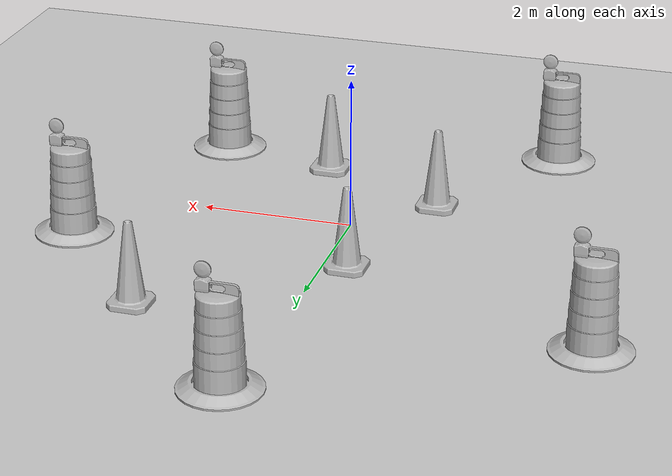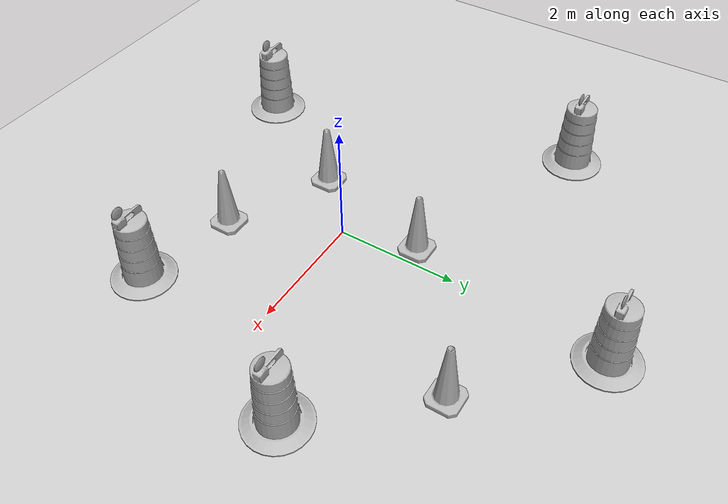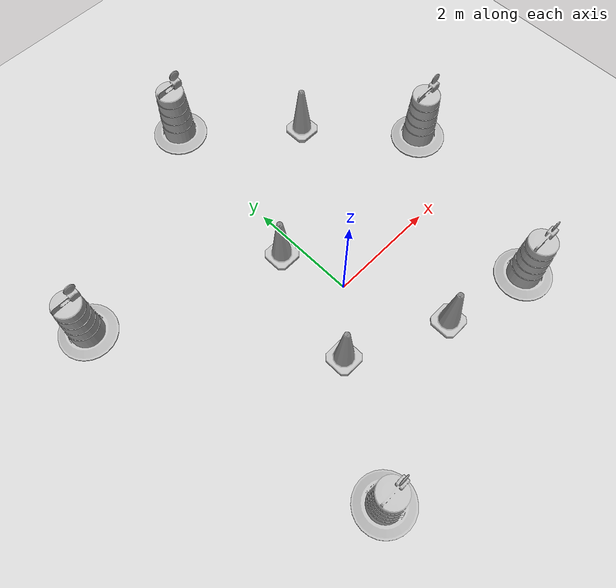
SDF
<sdf version="1.7">
 <world name="default">
  <light name="sun" type="directional">
   <pose>0 0 10 0 -0 0</pose>
   <diffuse>0.8 0.8 0.8 1</diffuse>
   <specular>0.2 0.2 0.2 1</specular>
   <attenuation>
    <range>1000</range>
    <constant>0.9</constant>
    <linear>0.01</linear>
    <quadratic>0.001</quadratic>
   </attenuation>
   <direction>-0.5 0.1 -0.9</direction>
   <spot><inner_angle>0</inner_angle><outer_angle>0</outer_angle><falloff>0</falloff></spot>
  </light>
  <model name="ground_plane">
   <static>1</static>
   <link name="link">
    <collision name="collision">
     <geometry><plane><normal>0 0 1</normal><size>100 100</size></plane></geometry>
     <surface>
      <contact><collide_bitmask>65535</collide_bitmask></contact>
      <friction><ode><mu>100</mu><mu2>50</mu2></ode></friction>
     </surface>
    </collision>
    <visual name="visual">
     <cast_shadows>0</cast_shadows>
     <geometry><plane><normal>0 0 1</normal><size>100 100</size></plane></geometry>
     <material>
      <script><uri>file://media/materials/scripts/gazebo.material</uri><name>Gazebo/Grey</name></script>
     </material>
    </visual>
   </link>
  </model>
  <gravity>0 0 -9.8</gravity>
  <magnetic_field>6e-06 2.3e-05 -4.2e-05</magnetic_field>
  <atmosphere type="adiabatic"/>
  <physics type="ode">
   <max_step_size>0.001</max_step_size>
   <real_time_factor>1</real_time_factor>
   <real_time_update_rate>1000</real_time_update_rate>
  </physics>
  <scene><ambient>0.4 0.4 0.4 1</ambient><background>0.7 0.7 0.7 1</background><shadows>1</shadows></scene>
  <spherical_coordinates>
   <surface_model>EARTH_WGS84</surface_model>
   <latitude_deg>0</latitude_deg>
   <longitude_deg>0</longitude_deg>
   <elevation>0</elevation>
   <heading_deg>0</heading_deg>
  </spherical_coordinates>
  <model name="Construction Cone">
   <link name="link">
    <collision name="collision">
     <geometry>
      <mesh><scale>10 10 10</scale><uri>model://construction_cone/meshes/construction_cone.dae</uri></mesh>
     </geometry>
    </collision>
    <visual name="visual">
     <geometry>
      <mesh><scale>10 10 10</scale><uri>model://construction_cone/meshes/construction_cone.dae</uri></mesh>
     </geometry>
    </visual>
    <inertial>
     <inertia><ixx>1</ixx><ixy>0</ixy><ixz>0</ixz><iyy>1</iyy><iyz>0</iyz><izz>1</izz></inertia>
     <mass>1</mass>
    </inertial>
   </link>
   <pose>-0.306338 1.20398 -0 0 -0 0</pose>
  </model>
  <model name="Construction Cone_clone">
   <link name="link">
    <collision name="collision">
     <geometry>
      <mesh><scale>10 10 10</scale><uri>model://construction_cone/meshes/construction_cone.dae</uri></mesh>
     </geometry>
    </collision>
    <visual name="visual">
     <geometry>
      <mesh><scale>10 10 10</scale><uri>model://construction_cone/meshes/construction_cone.dae</uri></mesh>
     </geometry>
    </visual>
    <inertial>
     <inertia><ixx>1</ixx><ixy>0</ixy><ixz>0</ixz><iyy>1</iyy><iyz>0</iyz><izz>1</izz></inertia>
     <mass>1</mass>
    </inertial>
   </link>
   <pose>-0.925134 -0.889842 -0 0 -0 0</pose>
  </model>
  <model name="Construction Cone_clone_0">
   <link name="link">
    <collision name="collision">
     <geometry>
      <mesh><scale>10 10 10</scale><uri>model://construction_cone/meshes/construction_cone.dae</uri></mesh>
     </geometry>
    </collision>
    <visual name="visual">
     <geometry>
      <mesh><scale>10 10 10</scale><uri>model://construction_cone/meshes/construction_cone.dae</uri></mesh>
     </geometry>
    </visual>
    <inertial>
     <inertia><ixx>1</ixx><ixy>0</ixy><ixz>0</ixz><iyy>1</iyy><iyz>0</iyz><izz>1</izz></inertia>
     <mass>1</mass>
    </inertial>
   </link>
   <pose>1.888 2.90357 -0 0 -0 0</pose>
  </model>
  <model name="Construction Cone_clone_1">
   <link name="link">
    <collision name="collision">
     <geometry>
      <mesh><scale>10 10 10</scale><uri>model://construction_cone/meshes/construction_cone.dae</uri></mesh>
     </geometry>
    </collision>
    <visual name="visual">
     <geometry>
      <mesh><scale>10 10 10</scale><uri>model://construction_cone/meshes/construction_cone.dae</uri></mesh>
     </geometry>
    </visual>
    <inertial>
     <inertia><ixx>1</ixx><ixy>0</ixy><ixz>0</ixz><iyy>1</iyy><iyz>0</iyz><izz>1</izz></inertia>
     <mass>1</mass>
    </inertial>
   </link>
   <pose>0.782479 -1.69034 -1e-05 0 -0 0</pose>
  </model>
  <model name="Construction Barrel">
   <link name="link">
    <inertial>
     <pose>0 0 0.4 0 -0 0</pose>
     <mass>500</mass>
     <inertia><ixx>51.2096</ixx><iyy>51.2096</iyy><izz>25</izz><ixy>0</ixy><ixz>0</ixz><iyz>0</iyz></inertia>
    </inertial>
    <collision name="collision">
     <geometry><mesh><uri>model://construction_barrel/meshes/construction_barrel.dae</uri></mesh></geometry>
    </collision>
    <visual name="visual">
     <geometry><mesh><uri>model://construction_barrel/meshes/construction_barrel.dae</uri></mesh></geometry>
    </visual>
   </link>
   <pose>-3.5998 2.4581 -0 0 -0 -1e-05</pose>
  </model>
  <model name="Construction Barrel_clone">
   <link name="link">
    <inertial>
     <pose>0 0 0.4 0 -0 0</pose>
     <mass>500</mass>
     <inertia><ixx>51.2096</ixx><iyy>51.2096</iyy><izz>25</izz><ixy>0</ixy><ixz>0</ixz><iyz>0</iyz></inertia>
    </inertial>
    <collision name="collision">
     <geometry><mesh><uri>model://construction_barrel/meshes/construction_barrel.dae</uri></mesh></geometry>
    </collision>
    <visual name="visual">
     <geometry><mesh><uri>model://construction_barrel/meshes/construction_barrel.dae</uri></mesh></geometry>
    </visual>
   </link>
   <pose>2.38125 -2.05003 -0 1e-06 -1e-06 -7e-06</pose>
  </model>
  <model name="Construction Barrel_clone_0">
   <link name="link">
    <inertial>
     <pose>0 0 0.4 0 -0 0</pose>
     <mass>500</mass>
     <inertia><ixx>51.2096</ixx><iyy>51.2096</iyy><izz>25</izz><ixy>0</ixy><ixz>0</ixz><iyz>0</iyz></inertia>
    </inertial>
    <collision name="collision">
     <geometry><mesh><uri>model://construction_barrel/meshes/construction_barrel.dae</uri></mesh></geometry>
    </collision>
    <visual name="visual">
     <geometry><mesh><uri>model://construction_barrel/meshes/construction_barrel.dae</uri></mesh></geometry>
    </visual>
   </link>
   <pose>3.35611 1.21029 -1e-06 0 4e-06 -1.1e-05</pose>
  </model>
  <model name="Construction Barrel_clone_1">
   <link name="link">
    <inertial>
     <pose>0 0 0.4 0 -0 0</pose>
     <mass>500</mass>
     <inertia><ixx>51.2096</ixx><iyy>51.2096</iyy><izz>25</izz><ixy>0</ixy><ixz>0</ixz><iyz>0</iyz></inertia>
    </inertial>
    <collision name="collision">
     <geometry><mesh><uri>model://construction_barrel/meshes/construction_barrel.dae</uri></mesh></geometry>
    </collision>
    <visual name="visual">
     <geometry><mesh><uri>model://construction_barrel/meshes/construction_barrel.dae</uri></mesh></geometry>
    </visual>
   </link>
   <pose>0.173043 4.52002 -0 0 0 -1.4e-05</pose>
  </model>
  <model name="Construction Barrel_clone_2">
   <link name="link">
    <inertial>
     <pose>0 0 0.4 0 -0 0</pose>
     <mass>500</mass>
     <inertia><ixx>51.2096</ixx><iyy>51.2096</iyy><izz>25</izz><ixy>0</ixy><ixz>0</ixz><iyz>0</iyz></inertia>
    </inertial>
    <collision name="collision">
     <geometry><mesh><uri>model://construction_barrel/meshes/construction_barrel.dae</uri></mesh></geometry>
    </collision>
    <visual name="visual">
     <geometry><mesh><uri>model://construction_barrel/meshes/construction_barrel.dae</uri></mesh></geometry>
    </visual>
   </link>
   <pose>-2.16209 -2.89895 -1e-06 -8e-06 -2e-06 -1.1e-05</pose>
  </model>
 </world>
</sdf>
